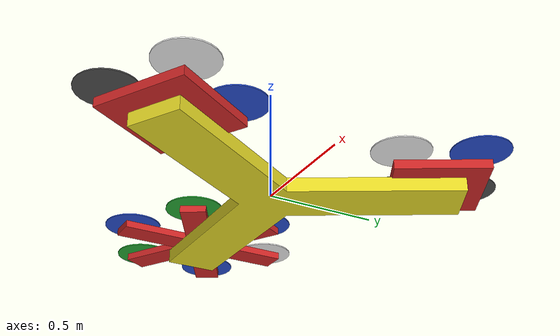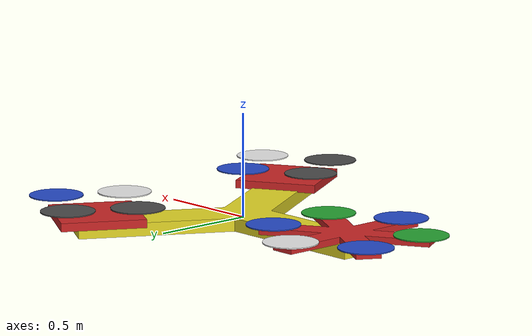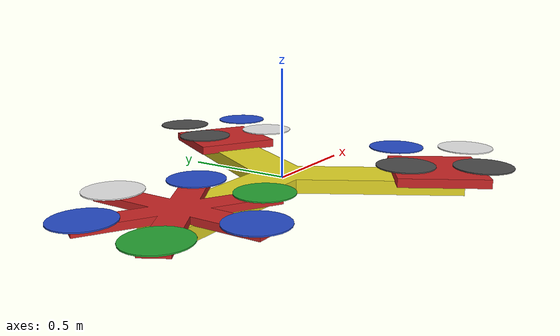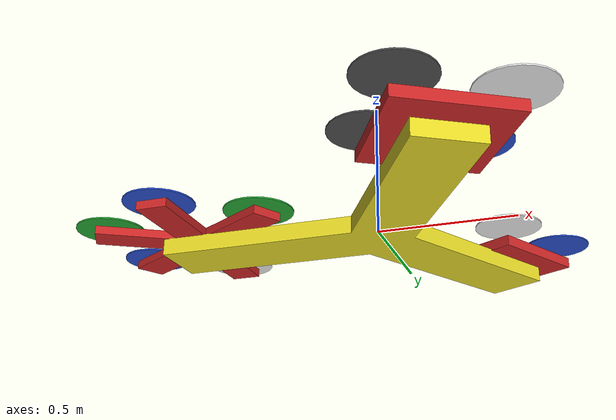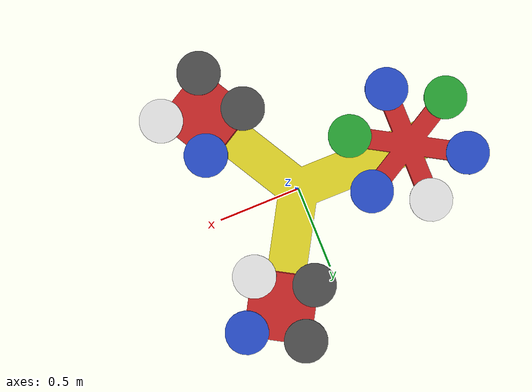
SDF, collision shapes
<sdf version='1.6'>
  <model name='tri_fr_parent'>
    <link name='base_link'>
      <pose frame=''>0 0 0 0 -0 0</pose>
      <inertial>
        <pose frame=''>0 0 0.0 0 -0 0</pose>
        <mass>0.5</mass>
        <inertia>
          <ixx>0.09208</ixx>
          <ixy>0</ixy>
          <ixz>0</ixz>
          <iyy>0.09208</iyy>
          <iyz>0</iyz>
          <izz>0.182532</izz>
        </inertia>
      </inertial>
      <collision name='base_link_inertia_collision'>
        <pose frame=''>0 0 0.025 -1.570795 -0 1.570795</pose>
        <geometry>
          <mesh>
            <scale>0.00211 0.00211 0.00211</scale>
            <uri>model://tri_fr_parent/meshes/frame.STL</uri>
          </mesh>
        </geometry>
        <surface>
          <contact>
            <ode>
              <min_depth>0.001</min_depth>
              <max_vel>0</max_vel>
            </ode>
          </contact>
          <friction>
            <ode/>
          </friction>
        </surface>
      </collision>
      <visual name='base_link_inertia_visual'>
        <pose frame=''>0 0 0.0 -1.570795 -0 1.570795</pose>
        <geometry>
          <mesh>
            <scale>0.00211 0.00211 0.00211</scale>
            <uri>model://tri_fr_parent/meshes/Y_frame.stl</uri>
          </mesh>
        </geometry>
        <material>
          <script>
            <name>Gazebo/Yellow</name>
            <uri>file://media/materials/scripts/gazebo.material</uri>
          </script>
        </material>
      </visual>
      <gravity>1</gravity>
      <velocity_decay/>
    </link>

    <link name='/imu_link'>
      <pose frame=''>0 0 0 0 -0 0</pose>
      <inertial>
          <pose frame=''>0 0 0 0 -0 0</pose>
          <mass>0.015</mass>
          <inertia>
              <ixx>1e-05</ixx>
              <ixy>0</ixy>
              <ixz>0</ixz>
              <iyy>1e-05</iyy>
              <iyz>0</iyz>
              <izz>1e-05</izz>
          </inertia>
      </inertial>
    </link>
    <joint name='/imu_joint' type='revolute'>
      <child>/imu_link</child>
      <parent>base_link</parent>
      <axis>
          <xyz>1 0 0</xyz>
          <limit>
              <lower>0</lower>
              <upper>0</upper>
              <effort>0</effort>
              <velocity>0</velocity>
          </limit>
          <dynamics>
              <spring_reference>0</spring_reference>
              <spring_stiffness>0</spring_stiffness>
          </dynamics>
          <use_parent_model_frame>1</use_parent_model_frame>
      </axis>
    </joint>

    <static>0</static>

    <include>
      <uri>model://hex_fr_r</uri>
      <pose frame=''>-0.7 0 0.04 0 -0 1.570795</pose>
    </include>
    <joint name="hex_fr_r_link" type="fixed">
      <parent>base_link</parent>
      <child>hex_fr_r::base_link</child>
    </joint>

    <include>
      <uri>model://quad_fr_fr</uri>
      <pose frame=''>0.35 -0.60622 0.04 0 -0 0.523599</pose>
    </include>
    <joint name="quad_fr_fr_link" type="fixed">
      <parent>base_link</parent>
      <child>quad_fr_fr::base_link</child>
    </joint>

    <include>
      <uri>model://quad_fr_fl</uri>
      <pose frame=''>0.35 0.60622 0.04 0 -0 -0.523599</pose>
    </include>
    <joint name="quad_fr_fl_link" type="fixed">
      <parent>base_link</parent>
      <child>quad_fr_fl::base_link</child>
    </joint>

    <plugin name='gps_plugin' filename='libgazebo_gps_plugin.so'>
      <robotNamespace>tri_fr_parent</robotNamespace>
      <gpsNoise>1</gpsNoise>
    </plugin>
    <plugin name='magnetometer_plugin' filename='libgazebo_magnetometer_plugin.so'>
      <robotNamespace>tri_fr_parent</robotNamespace>
      <pubRate>20</pubRate>
      <noiseDensity>0.0004</noiseDensity>
      <randomWalk>6.4e-06</randomWalk>
      <biasCorrelationTime>600</biasCorrelationTime>
      <magTopic>/mag</magTopic>
    </plugin>
    <plugin name='barometer_plugin' filename='libgazebo_barometer_plugin.so'>
      <robotNamespace>tri_fr_parent</robotNamespace>
      <pubRate>10</pubRate>
      <baroTopic>/baro</baroTopic>
    </plugin>
    <plugin name='mavlink_interface' filename='libgazebo_mavlink_interface.so'>
      <robotNamespace>tri_fr_parent</robotNamespace>
      <imuSubTopic>/imu</imuSubTopic>
      <gpsSubTopic>/gps</gpsSubTopic>
      <magSubTopic>/mag</magSubTopic>
      <baroSubTopic>/baro</baroSubTopic>
      <mavlink_addr>INADDR_ANY</mavlink_addr>
      <mavlink_udp_port>14061</mavlink_udp_port>
      <mavlink_tcp_port>4561</mavlink_tcp_port>
      <serialEnabled>0</serialEnabled>
      <serialDevice>/dev/ttyACM0</serialDevice>
      <baudRate>921600</baudRate>
      <qgc_addr>INADDR_ANY</qgc_addr>
      <qgc_udp_port>14551</qgc_udp_port>
      <sdk_addr>INADDR_ANY</sdk_addr>
      <sdk_udp_port>13651</sdk_udp_port>
      <hil_mode>0</hil_mode>
      <hil_state_level>0</hil_state_level>
      <vehicle_is_tailsitter>0</vehicle_is_tailsitter>
      <send_vision_estimation>1</send_vision_estimation>
      <send_odometry>0</send_odometry>
      <enable_lockstep>1</enable_lockstep>
      <use_tcp>1</use_tcp>
      <motorSpeedCommandPubTopic>/gazebo/command/motor_speed</motorSpeedCommandPubTopic>
      <control_channels>
        <channel name='rotor1'>
          <input_index>0</input_index>
          <input_offset>0</input_offset>
          <input_scaling>1000</input_scaling>
          <zero_position_disarmed>0</zero_position_disarmed>
          <zero_position_armed>100</zero_position_armed>
          <joint_control_type>velocity</joint_control_type>
        </channel>
        <channel name='rotor2'>
          <input_index>1</input_index>
          <input_offset>0</input_offset>
          <input_scaling>1000</input_scaling>
          <zero_position_disarmed>0</zero_position_disarmed>
          <zero_position_armed>100</zero_position_armed>
          <joint_control_type>velocity</joint_control_type>
        </channel>
        <channel name='rotor3'>
          <input_index>2</input_index>
          <input_offset>0</input_offset>
          <input_scaling>1000</input_scaling>
          <zero_position_disarmed>0</zero_position_disarmed>
          <zero_position_armed>100</zero_position_armed>
          <joint_control_type>velocity</joint_control_type>
        </channel>
        <channel name='rotor4'>
          <input_index>3</input_index>
          <input_offset>0</input_offset>
          <input_scaling>1000</input_scaling>
          <zero_position_disarmed>0</zero_position_disarmed>
          <zero_position_armed>100</zero_position_armed>
          <joint_control_type>velocity</joint_control_type>
        </channel>
      </control_channels>
    </plugin>
    <static>0</static>
    <plugin name='rotors_gazebo_imu_plugin' filename='libgazebo_imu_plugin.so'>
      <robotNamespace>tri_fr_parent</robotNamespace>
      <linkName>/imu_link</linkName>
      <imuTopic>/imu</imuTopic>
      <gyroscopeNoiseDensity>0.0003394</gyroscopeNoiseDensity>
      <gyroscopeRandomWalk>3.8785e-05</gyroscopeRandomWalk>
      <gyroscopeBiasCorrelationTime>1000.0</gyroscopeBiasCorrelationTime>
      <gyroscopeTurnOnBiasSigma>0.0087</gyroscopeTurnOnBiasSigma>
      <accelerometerNoiseDensity>0.004</accelerometerNoiseDensity>
      <accelerometerRandomWalk>0.006</accelerometerRandomWalk>
      <accelerometerBiasCorrelationTime>300.0</accelerometerBiasCorrelationTime>
      <accelerometerTurnOnBiasSigma>0.196</accelerometerTurnOnBiasSigma>
    </plugin>

  </model>

</sdf>
